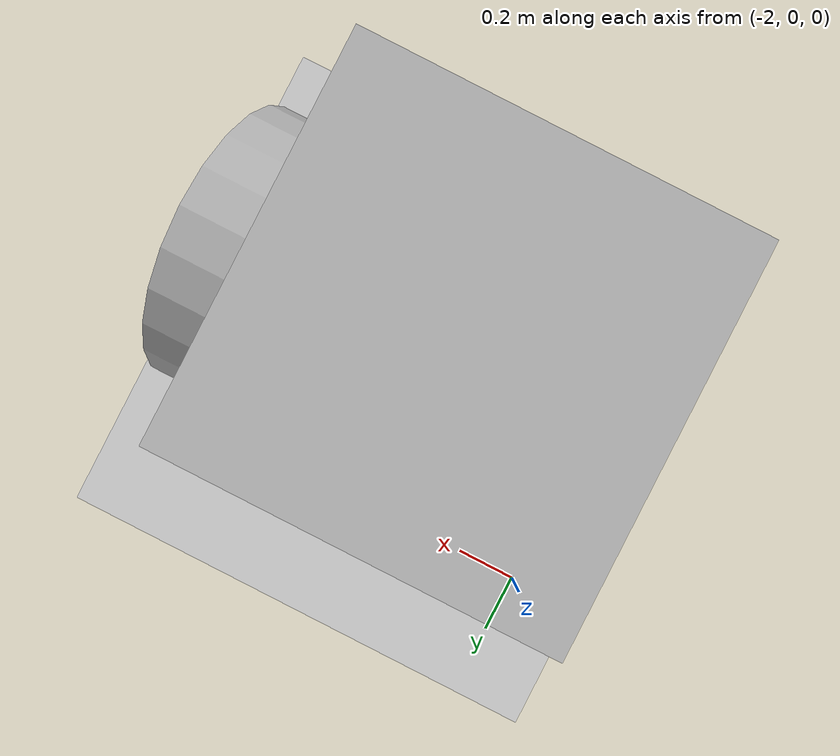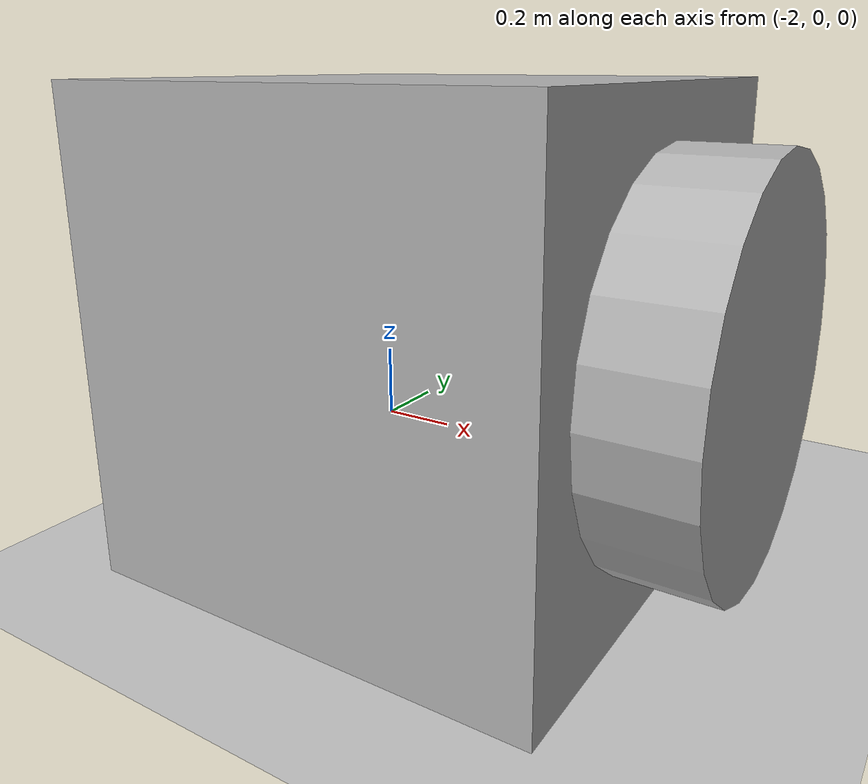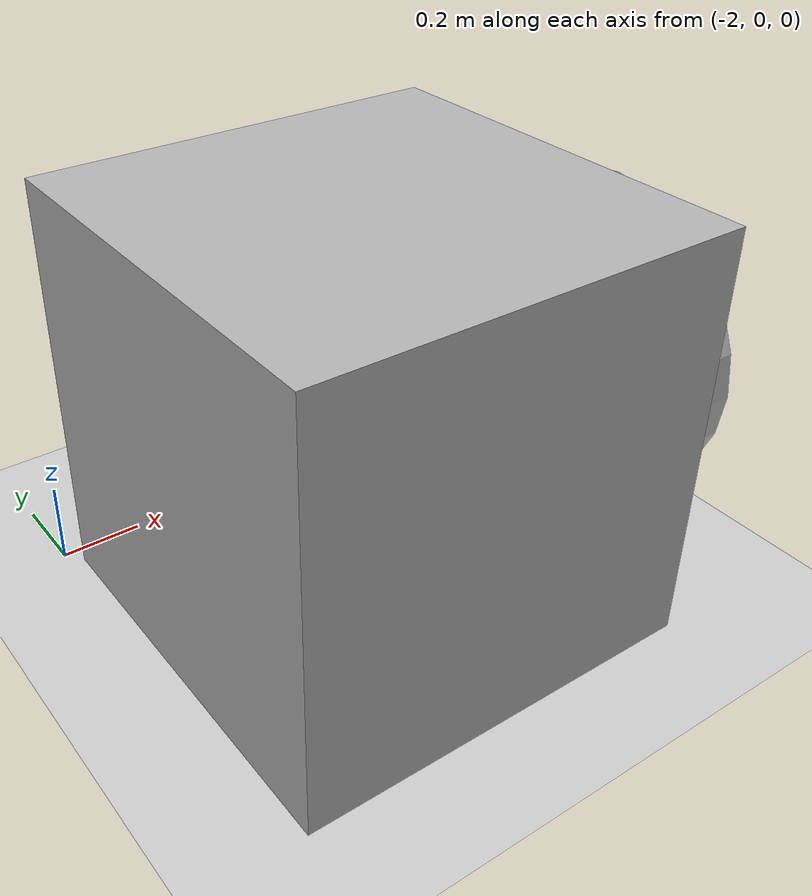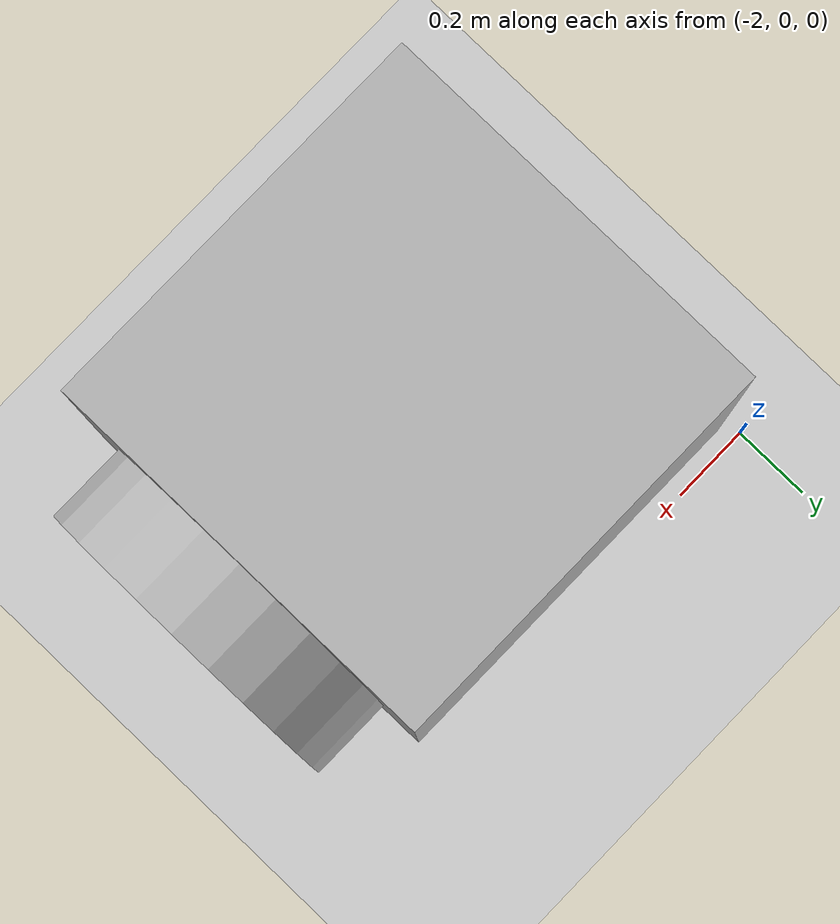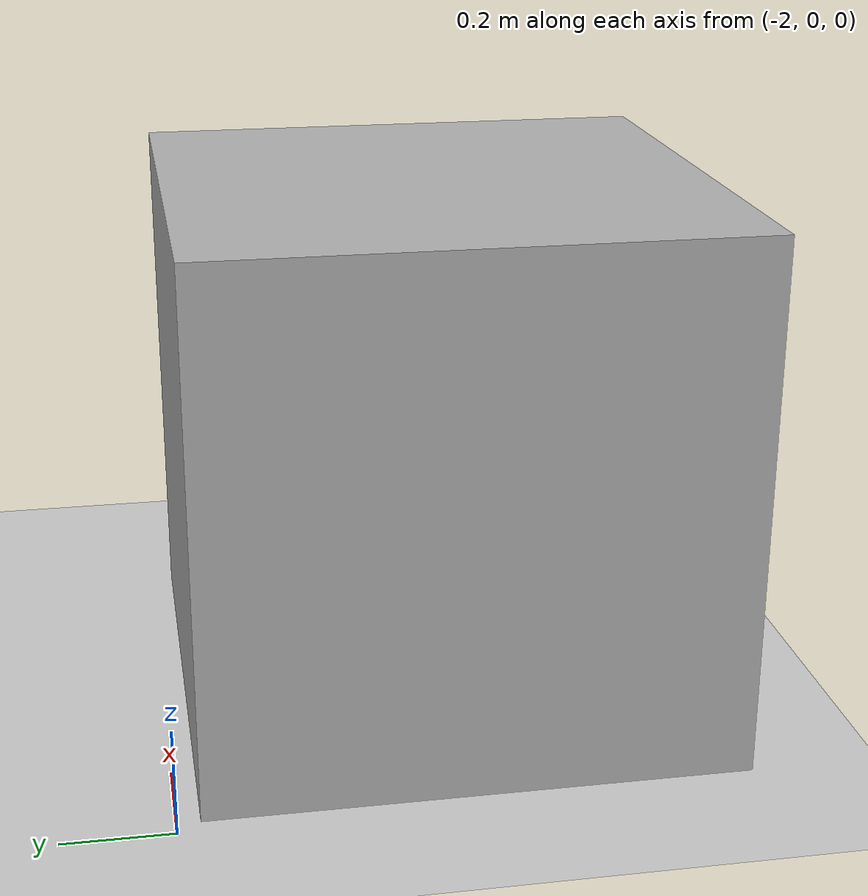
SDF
<sdf version='1.10'>
  <world name='empty'>
    <physics name='1ms' type='ignored'>
      <max_step_size>0.001</max_step_size>
      <real_time_factor>1</real_time_factor>
      <real_time_update_rate>1000</real_time_update_rate>
    </physics>
    <plugin name='gz::sim::systems::Physics' filename='gz-sim-physics-system'/>
    <plugin name='gz::sim::systems::UserCommands' filename='gz-sim-user-commands-system'/>
    <plugin name='gz::sim::systems::SceneBroadcaster' filename='gz-sim-scene-broadcaster-system'/>
    <plugin name='gz::sim::systems::Contact' filename='gz-sim-contact-system'/>
    <gravity>0 0 0</gravity>
    <magnetic_field>5.5644999999999998e-06 2.2875799999999999e-05 -4.2388400000000002e-05</magnetic_field>
    <atmosphere type='adiabatic'/>
    <scene>
      <ambient>0.400000006 0.400000006 0.400000006 1</ambient>
      <background>0.699999988 0.699999988 0.699999988 1</background>
      <shadows>true</shadows>
    </scene>
    <model name='ground_plane'>
      <static>true</static>
      <link name='link'>
        <collision name='collision'>
          <geometry>
            <plane>
              <normal>0 0 1</normal>
              <size>100 100</size>
            </plane>
          </geometry>
          <surface>
            <friction>
              <ode/>
            </friction>
            <bounce/>
            <contact/>
          </surface>
        </collision>
        <visual name='visual'>
          <geometry>
            <plane>
              <normal>0 0 1</normal>
              <size>100 100</size>
            </plane>
          </geometry>
          <material>
            <ambient>0.800000012 0.800000012 0.800000012 1</ambient>
            <diffuse>0.800000012 0.800000012 0.800000012 1</diffuse>
            <specular>0.800000012 0.800000012 0.800000012 1</specular>
          </material>
        </visual>
        <pose>0 0 0 0 0 0</pose>
        <inertial>
          <pose>0 0 0 0 0 0</pose>
          <mass>1</mass>
          <inertia>
            <ixx>1</ixx>
            <ixy>0</ixy>
            <ixz>0</ixz>
            <iyy>1</iyy>
            <iyz>0</iyz>
            <izz>1</izz>
          </inertia>
        </inertial>
        <enable_wind>false</enable_wind>
      </link>
      <pose>0 0 0 0 0 0</pose>
      <self_collide>false</self_collide>
    </model>

    <model name='Cam'>
      <pose>-1.4686271693067754 -0.54166921164619264 0.5 0 0 0</pose>
      <link name='box_link'>
        <inertial>
          <inertia>
            <ixx>0.16666</ixx>
            <ixy>0</ixy>
            <ixz>0</ixz>
            <iyy>0.16666</iyy>
            <iyz>0</iyz>
            <izz>0.16666</izz>
          </inertia>
          <mass>1</mass>
          <pose>0 0 0 0 0 0</pose>
        </inertial>
        <collision name='box_collision'>
          <geometry>
            <box>
              <size>1 1 1</size>
            </box>
          </geometry>
          <surface>
            <friction>
              <ode/>
            </friction>
            <bounce/>
            <contact/>
          </surface>
        </collision>
        <visual name='box_visual'>
          <geometry>
            <box>
              <size>1 1 1</size>
            </box>
          </geometry>
          <material>
            <ambient>0.300000012 0.300000012 0.300000012 1</ambient>
            <diffuse>0.699999988 0.699999988 0.699999988 1</diffuse>
            <specular>1 1 1 1</specular>
          </material>
        </visual>
        <pose>0 0 0 0 0 0</pose>
        <enable_wind>false</enable_wind>
      </link>
      <static>false</static>
      <self_collide>false</self_collide>

      <link name='cylinder_link'>
        <pose relative_to="box_link">0.6 0 -0 0 1.5707498978803278 0</pose> <!--angles are in radian-->
        <inertial>
          <inertia>
            <ixx>0.14580000000000001</ixx>
            <ixy>0</ixy>
            <ixz>0</ixz>
            <iyy>0.14580000000000001</iyy>
            <iyz>0</iyz>
            <izz>0.125</izz>
          </inertia>
          <mass>1</mass>
        </inertial>
        <collision name='cylinder_collision'>
          <geometry>
            <cylinder>
              <radius>0.4</radius>
              <length>0.2</length>
            </cylinder>
          </geometry>
          <surface>
            <friction>
              <ode/>
            </friction>
            <bounce/>
            <contact/>
          </surface>
        </collision>
        <visual name='cylinder_visual'>
          <geometry>
            <cylinder>
              <radius>0.4</radius>
              <length>0.2</length>
            </cylinder>
          </geometry>
          <material>
            <ambient>0.300000012 0.300000012 0.300000012 1</ambient>
            <diffuse>0.699999988 0.699999988 0.699999988 1</diffuse>
            <specular>1 1 1 1</specular>
          </material>
        </visual>
        <pose>0 0 0 0 0 0</pose>
        <enable_wind>false</enable_wind>
      </link>
      <static>false</static>
      <self_collide>false</self_collide>

      <!--connecting these links together using joints-->
            <joint name='1_joint' type='universal'>
                <parent>box_link</parent>
                <child>cylinder_link</child>
            </joint>

      <!--plugin-->
            <plugin
                filename="libgz-sim-joint-position-controller-system.so"
                name="gz::sim::systems::JointPositionController">
                <joint_name>1_joint</joint_name>
            </plugin>

            <plugin
                filename="libgz-sim-joint-trajectory-controller-system.so"
                name="gz::sim::systems::JointTrajectoryController">
                <joint_name>1_joint</joint_name>
            </plugin>

    </model>

    <light name='sun' type='directional'>
      <pose>0 0 10 0 0 0</pose>
      <cast_shadows>true</cast_shadows>
      <intensity>1</intensity>
      <direction>-0.5 0.10000000000000001 -0.90000000000000002</direction>
      <diffuse>0.800000012 0.800000012 0.800000012 1</diffuse>
      <specular>0.200000003 0.200000003 0.200000003 1</specular>
      <attenuation>
        <range>1000</range>
        <linear>0.01</linear>
        <constant>0.90000000000000002</constant>
        <quadratic>0.001</quadratic>
      </attenuation>
      <spot>
        <inner_angle>0</inner_angle>
        <outer_angle>0</outer_angle>
        <falloff>0</falloff>
      </spot>
    </light>
  </world>
</sdf>
